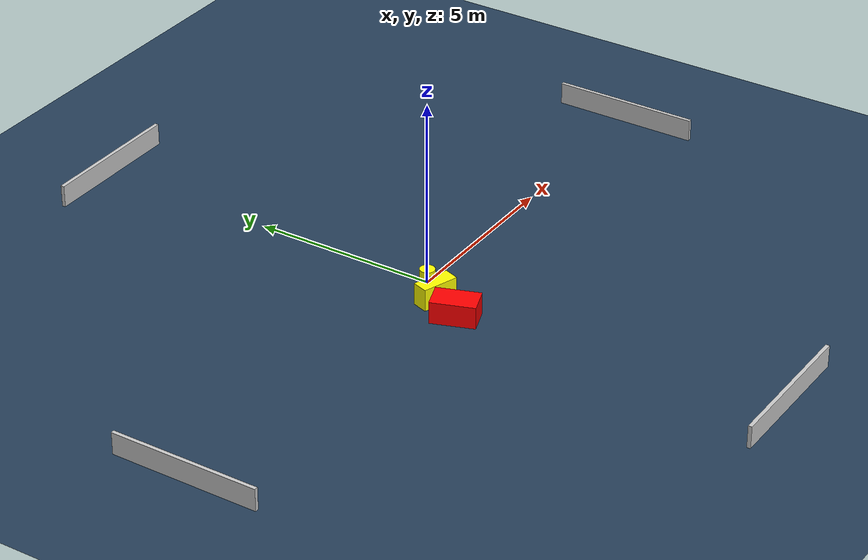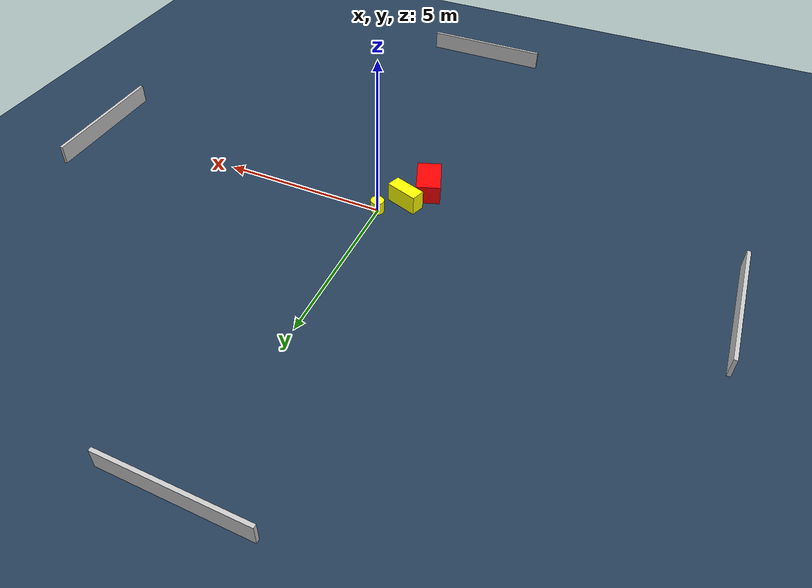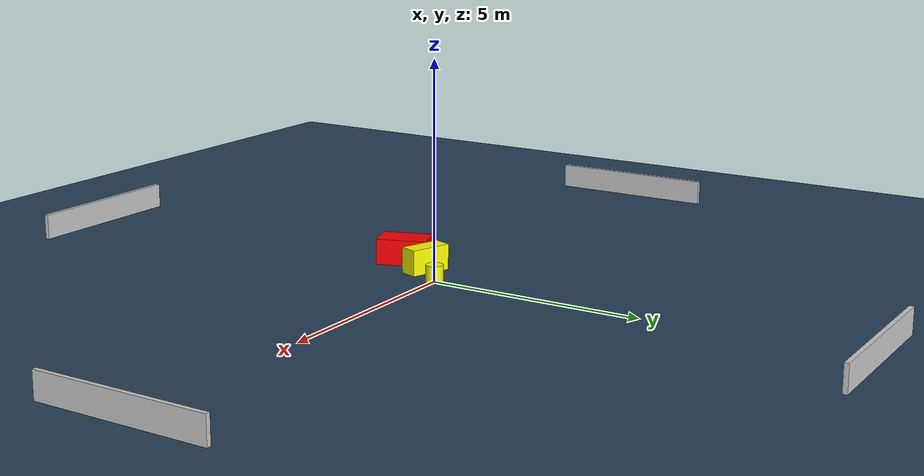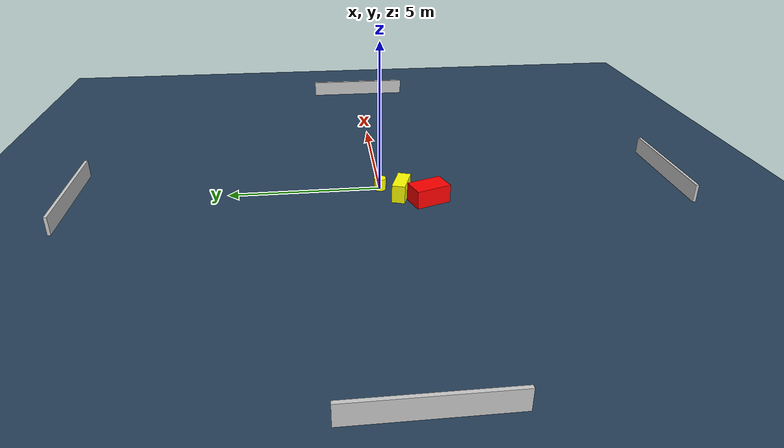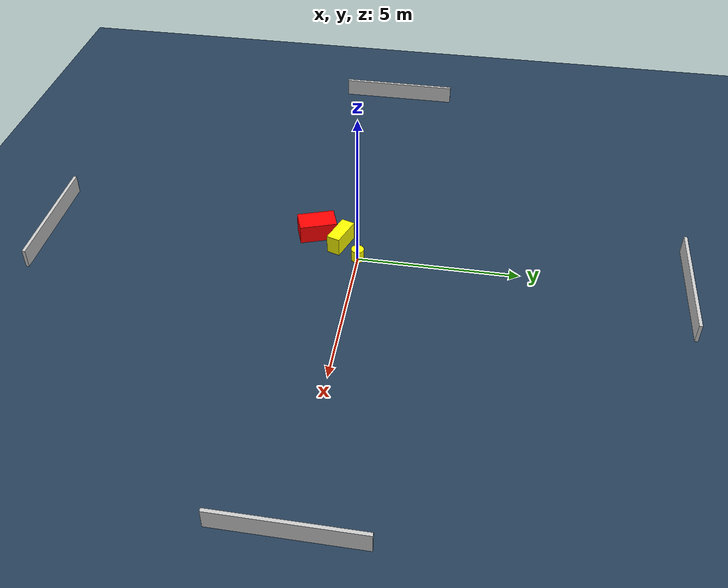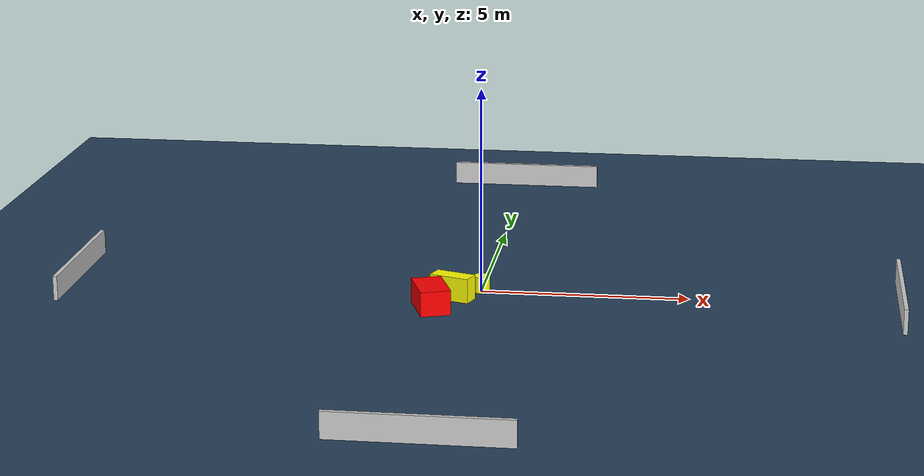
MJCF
<?xml version="1.0" ?>
<mujoco model="generated_environment">
  <option timestep="0.01" integrator="RK4" cone="elliptic"/>
  <default>
    <geom density="1"/>
  </default>
  <asset>
    <texture builtin="gradient" height="3072" name="skybox" rgb1="0.3 0.5 0.7" rgb2="0 0 0" type="skybox" width="512"/>
    <texture builtin="checker" height="300" name="groundplane" rgb1="0.2 0.3 0.4" rgb2="0.1 0.2 0.3" type="2d" width="300"/>
    <material name="groundplane" reflectance="0.2" texrepeat="5 5" texture="groundplane"/>
  </asset>
  <worldbody>
    <light dir="0 0 -1" directional="true" pos="0 0 1.5"/>
    <geom condim="3" friction="0.5 0.005 0.001" material="groundplane" name="floor" pos="0 0 0" size="0 0 0.05" type="plane"/>
    <body name="walls">
      <geom name="wall_1" condim="4" pos="-10.0 0.0 0.3" rgba="0.800000011920929 0.800000011920929 0.800000011920929 1.0" size="0.05 2.0 0.3" type="box"/>
      <geom name="wall_2" condim="4" pos="10.0 0.0 0.3" rgba="0.800000011920929 0.800000011920929 0.800000011920929 1.0" size="0.05 2.0 0.3" type="box"/>
      <geom name="wall_3" condim="4" pos="0.0 -10.0 0.3" rgba="0.800000011920929 0.800000011920929 0.800000011920929 1.0" size="2.0 0.05 0.3" type="box"/>
      <geom name="wall_4" condim="4" pos="0.0 10.0 0.3" rgba="0.800000011920929 0.800000011920929 0.800000011920929 1.0" size="2.0 0.05 0.3" type="box"/>
    </body>
    <body name="robot">
      <joint name="joint_x" type="slide" pos="0 0 0" axis="1 0 0"/>
      <joint name="joint_y" type="slide" pos="0 0 0" axis="0 1 0"/>
      <geom name="robot" type="cylinder" pos="0.0 0.0 0.2" size="0.2 0.2 0.0" mass="5.0" friction="1.0 0.005 0.0001" condim="4" rgba="1.0 1.0 0.0 1.0"/>
    </body>
    <body name="obstacle_1_movable">
      <geom name="obstacle_1_movable" condim="4" pos="-0.6184295899491928 -0.6398255654544084 0.3" euler="0 0 70.89290668860731" friction="0.0 0.005 0.001" rgba="1.0 1.0 0.0 1.0" size="0.2131542127226156 0.49707961671717643 0.3" type="box" mass="0.1"/>
      <joint type="free"/>
    </body>
    <body name="obstacle_2_static">
      <geom name="obstacle_2_static" condim="4" pos="-1.0211785389175123 -1.4756588985549786 0.3" euler="0 0 109.70343108637725" friction="0.0 0.005 0.001" rgba="1.0 0.0 0.0 1.0" size="0.5894326467330988 0.36281368923170554 0.3" type="box"/>
    </body>
  </worldbody>
  <actuator>
    <motor name="actuator_x" joint="joint_x" gear="1" ctrlrange="-1 1"/>
    <motor name="actuator_y" joint="joint_y" gear="1" ctrlrange="-1 1"/>
  </actuator>
</mujoco>
